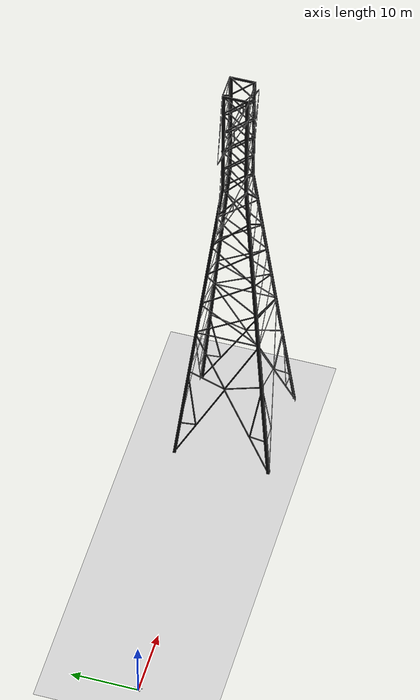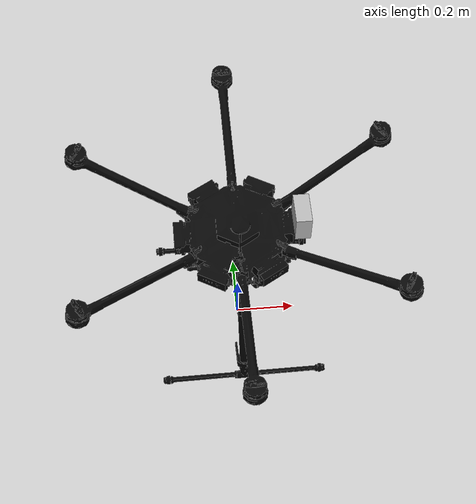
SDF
<sdf version="1.7">
 <world name="default">
  <scene>
   <sky><clouds><speed>12</speed></clouds></sky>
   <ambient>0.5 0.5 0.5 1</ambient>
   <background>0.5 0.5 0.5 1</background>
   <shadows>1</shadows>
  </scene>
  <physics type="ode">
   <ode>
    <solver>
     <type>quick</type>
     <iters>10</iters>
     <sor>1.3</sor>
     <use_dynamic_moi_rescaling>0</use_dynamic_moi_rescaling>
    </solver>
    <constraints>
     <cfm>0</cfm>
     <erp>0.2</erp>
     <contact_max_correcting_vel>10</contact_max_correcting_vel>
     <contact_surface_layer>0.001</contact_surface_layer>
    </constraints>
   </ode>
   <real_time_update_rate>1000</real_time_update_rate>
   <max_step_size>0.001</max_step_size>
   <real_time_factor>1</real_time_factor>
  </physics>
  <include><uri>model://prognodrone</uri></include>
  <gravity>0 0 -9.81</gravity>
  <magnetic_field>6e-06 2.3e-05 -4.2e-05</magnetic_field>
  <atmosphere type="adiabatic"/>
  <spherical_coordinates>
   <surface_model>EARTH_WGS84</surface_model>
   <latitude_deg>0</latitude_deg>
   <longitude_deg>0</longitude_deg>
   <elevation>0</elevation>
   <heading_deg>0</heading_deg>
  </spherical_coordinates>
  <include><uri>model://grass_ground_plane</uri></include>
  <light name="user_directional_light_0" type="directional">
   <pose>-8.08698 4.69506 1 0 -0 0</pose>
   <diffuse>1 1 1 1</diffuse>
   <specular>0.1 0.1 0.1 1</specular>
   <direction>0.1 0.1 -0.9</direction>
   <attenuation>
    <range>20</range>
    <constant>0.5</constant>
    <linear>0.01</linear>
    <quadratic>0.001</quadratic>
   </attenuation>
   <spot><inner_angle>0</inner_angle><outer_angle>0</outer_angle><falloff>0</falloff></spot>
  </light>
  <light name="user_spot_light_0" type="spot">
   <pose>35.0376 -0.001219 1 0 -0 0</pose>
   <diffuse>1 1 1 1</diffuse>
   <specular>0.1 0.1 0.1 1</specular>
   <direction>0 0 -1</direction>
   <attenuation>
    <range>200</range>
    <constant>0</constant>
    <linear>0</linear>
    <quadratic>0.001</quadratic>
   </attenuation>
   <cast_shadows>0</cast_shadows>
   <spot><inner_angle>2</inner_angle><outer_angle>4</outer_angle><falloff>1</falloff></spot>
  </light>
  <light name="user_spot_light_0_clone" type="spot">
   <pose>36.5164 -0.037556 15 0 -0 0</pose>
   <diffuse>1 1 1 1</diffuse>
   <specular>0.0941176 0.0941176 0.0941176 1</specular>
   <direction>0 0 -1</direction>
   <attenuation>
    <range>200</range>
    <constant>0</constant>
    <linear>0</linear>
    <quadratic>0.001</quadratic>
   </attenuation>
   <cast_shadows>0</cast_shadows>
   <spot><inner_angle>2</inner_angle><outer_angle>4</outer_angle><falloff>1</falloff></spot>
  </light>
  <light name="user_spot_light_0_clone_0" type="spot">
   <pose>35.1506 0.020596 15 0 -0 0</pose>
   <diffuse>1 1 1 1</diffuse>
   <specular>0.0941176 0.0941176 0.0941176 1</specular>
   <direction>0 0 -1</direction>
   <attenuation>
    <range>200</range>
    <constant>0</constant>
    <linear>0</linear>
    <quadratic>0.001</quadratic>
   </attenuation>
   <cast_shadows>0</cast_shadows>
   <spot><inner_angle>2</inner_angle><outer_angle>4</outer_angle><falloff>1</falloff></spot>
  </light>
  <light name="user_spot_light_0_clone_1" type="spot">
   <pose>35.4852 -1.32431 15 0 -0 0</pose>
   <diffuse>1 1 1 1</diffuse>
   <specular>0.0941176 0.0941176 0.0941176 1</specular>
   <direction>0 0 -1</direction>
   <attenuation>
    <range>200</range>
    <constant>0</constant>
    <linear>0</linear>
    <quadratic>0.001</quadratic>
   </attenuation>
   <cast_shadows>0</cast_shadows>
   <spot><inner_angle>2</inner_angle><outer_angle>4</outer_angle><falloff>1</falloff></spot>
  </light>
  <include><pose>50 0 0 0 0 0</pose><uri>model://overheadpylon</uri></include>
 </world>
</sdf>

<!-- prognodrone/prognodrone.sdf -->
<sdf version='1.4'>
    <model name='prognodrone'>
        <!-- model plugins should be put in the front of the sensor plugins! -->
        <plugin name='simple_drone' filename='libplugin_drone.so'>
            <bodyName>base_link</bodyName>
            <imuTopic>/dji_sdk/imu</imuTopic>
            <rollpitchProportionalGain>10.0</rollpitchProportionalGain>
            <rollpitchDifferentialGain>5.0</rollpitchDifferentialGain>
            <rollpitchLimit>0.43</rollpitchLimit> <!--        M600Pro-->
            <yawProportionalGain>2.0</yawProportionalGain>
            <yawDifferentialGain>1.0</yawDifferentialGain>
            <yawLimit>2.6</yawLimit> <!--        M600Pro-->
            <velocityXYProportionalGain>5.0</velocityXYProportionalGain>
            <velocityXYDifferentialGain>2.3</velocityXYDifferentialGain>

            <velocityXYLimit>18</velocityXYLimit> <!--        M600Pro-->
            <velocityZProportionalGain>5.0</velocityZProportionalGain>
            <velocityZDifferentialGain>1.0</velocityZDifferentialGain>
            <velocityZLimit>5</velocityZLimit> <!--        M600Pro-->
            <positionXYProportionalGain>1.1</positionXYProportionalGain>
            <positionXYDifferentialGain>0.0</positionXYDifferentialGain>
            <positionXYIntegralGain>0.0</positionXYIntegralGain>
            <positionXYLimit>5</positionXYLimit>
            <positionZProportionalGain>1.0</positionZProportionalGain>
            <positionZDifferentialGain>0.2</positionZDifferentialGain>
            <positionZLimit>-1</positionZLimit>
            <maxForce>60</maxForce>
            <motionSmallNoise>0.05</motionSmallNoise>
            <motionDriftNoise>0.03</motionDriftNoise>
            <motionDriftNoiseTime>5.0</motionDriftNoiseTime>
        </plugin>
        <plugin name="gps_sim"  filename="libhector_gazebo_ros_gps.so" >
            <updateRate>4.0</updateRate>
            <bodyName>base_link</bodyName>
            <frameId>base_link</frameId>
            <topicName>/dji_sdk/gps_position</topicName>
            <velocityTopicName>/dji_sdk/velocity</velocityTopicName>
            <referenceLatitude>49.0128444</referenceLatitude>
            <referenceLongitude>8.407089</referenceLongitude>
            <drift>5.0 5.0 5.0</drift>
            <gaussianNoise>0.01 0.01 0.01</gaussianNoise>
            <velocityDrift>0 0 0</velocityDrift>
            <velocityGaussianNoise>0.05 0.05 0.05</velocityGaussianNoise>
        </plugin>

        <!-- pose of the quadrotor in the world frame -->
        <pose>0 0 0.00 0 0 0</pose>
        <link name='base_link'>
            <inertial>
                <mass>1.477</mass>
                <pose>0 0 0 0 0 0</pose>
                <inertia>         <!-- rotational inertia -->
                    <ixx>0.1152</ixx>
                    <ixy>0</ixy>
                    <ixz>0</ixz>
                    <iyy>0.1152</iyy>
                    <iyz>0</iyz>
                    <izz>0.218</izz>
                </inertia>
            </inertial>

            <visual name='visual'>
                <geometry>
                    <mesh><uri>model://prognodrone/m600.dae</uri></mesh>

                </geometry>
            </visual>

            <visual name='front_camera'>
                <pose> 0.2 0.0 0.6 0 0 0 </pose>
                <geometry>
                    <box>
                        <size>0.05 0.1 0.1</size>
                    </box>
                </geometry>
            </visual>

            <visual name='bottom_camera'>
                <pose> 0.0 0.0 0.4 0 0.5 0 </pose>
                <geometry>
                    <box>
                        <size>0.05 0.1 0.1</size>
                    </box>
                </geometry>
            </visual>

            <collision name='collision'>
                <geometry>
                    <mesh><uri>model://prognodrone/m600.dae</uri></mesh>
                </geometry>
            </collision>

            <gravity>1</gravity>

            <!-- IMU sensor in 100fps -->
            <sensor name='sensor_imu' type='imu'>
                <always_on> 1 </always_on>
                <update_rate> 100 </update_rate>
                <pose> 0 0 0 0 0 0 </pose>
                <plugin name='ros_imu' filename='libplugin_ros_imu.so'>
                </plugin>
                <imu>
                    <noise>
                        <type>gaussian</type>
                        <rate>
                            <mean> 0 </mean>
                            <stddev> 0 </stddev>
                        </rate>
                        <accel>
                            <mean> 0 </mean>
                            <stddev> 0.00 </stddev>
                        </accel>
                    </noise>
                </imu>
            </sensor>

            <!-- Front Depth and Color Cam -->
            <sensor name="camera" type="depth">
                <update_rate>20</update_rate>
                <camera>
                    <horizontal_fov>1.047198</horizontal_fov>
                    <image>
                        <width>640</width>
                        <height>480</height>
                        <format>R8G8B8</format>
                    </image>
                    <clip>
                        <near>0.05</near>
                        <far>5000</far>
                    </clip>
                </camera>
                <pose> 0.2 0.0 0.6 0 0 0 </pose>
                <plugin name="camera_plugin" filename="libgazebo_ros_openni_kinect.so">
                    <baseline>0.2</baseline>
                    <alwaysOn>true</alwaysOn>
                    <updateRate>0.0</updateRate>
                    <cameraName>front_camera</cameraName>
                    <imageTopicName>/drone/front_camera/color/image_raw</imageTopicName>
                    <depthImageTopicName>/drone/front_camera/depth/image_raw</depthImageTopicName>
                    <pointCloudTopicName>/drone/front_camera/depth/points</pointCloudTopicName>
                    <frameName>drone</frameName>
                    <pointCloudCutoff>0.5</pointCloudCutoff>
                    <pointCloudCutoffMax>100</pointCloudCutoffMax>
                    <distortionK1>0</distortionK1>
                    <distortionK2>0</distortionK2>
                    <distortionK3>0</distortionK3>
                    <distortionT1>0</distortionT1>
                    <distortionT2>0</distortionT2>
                    <CxPrime>0</CxPrime>
                    <Cx>0</Cx>
                    <Cy>0</Cy>
                    <focalLength>0</focalLength>
                    <hackBaseline>0</hackBaseline>
                </plugin>
            </sensor>

            <!-- Bottom Depth and Color Cam -->

            <sensor name="camera" type="depth">
                <update_rate>15</update_rate>
                <camera>
                    <horizontal_fov>2.047198</horizontal_fov>
                    <image>
                        <width>640</width>
                        <height>480</height>
                        <format>R8G8B8</format>
                    </image>
                    <clip>
                        <near>0.05</near>
                        <far>5000</far>
                    </clip>
                </camera>
                <pose> 0.0 0.0 0.4 0 0.5 0 </pose>
                <plugin name="camera_plugin" filename="libgazebo_ros_openni_kinect.so">
                    <baseline>0.2</baseline>
                    <alwaysOn>true</alwaysOn>
                    <updateRate>0.0</updateRate>
                    <cameraName>bottom_camera</cameraName>
                    <imageTopicName>/drone/bottom_camera/color/image_raw</imageTopicName>
                    <depthImageTopicName>/drone/bottom_camera/depth/image_raw</depthImageTopicName>
                    <pointCloudTopicName>/drone/bottom_camera/depth/points</pointCloudTopicName>
                    <frameName>drone</frameName>
                    <pointCloudCutoff>0.5</pointCloudCutoff>
                    <pointCloudCutoffMax>100</pointCloudCutoffMax>
                    <distortionK1>0</distortionK1>
                    <distortionK2>0</distortionK2>
                    <distortionK3>0</distortionK3>
                    <distortionT1>0</distortionT1>
                    <distortionT2>0</distortionT2>
                    <CxPrime>0</CxPrime>
                    <Cx>0</Cx>
                    <Cy>0</Cy>
                    <focalLength>0</focalLength>
                    <hackBaseline>0</hackBaseline>
                </plugin>
            </sensor>

        </link>
    </model>
</sdf>

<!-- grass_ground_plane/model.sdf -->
<sdf version="1.5">
  <model name="grass_ground_plane">
  <static>true</static>
    <link name="link">

      <pose>0 0 0 0 0 0</pose>

      <collision name="collision">

         <geometry>
          <plane>
            <normal>0 0 1</normal>
            <size>500 500</size>
          </plane>
        </geometry>

	<surface>
          <friction>
            <ode>
              <mu>100</mu>
              <mu2>50</mu2>
            </ode>
          </friction>
        </surface>

      </collision>

      <visual name="visual">
       <cast_shadows>false</cast_shadows>
        <geometry>
          <plane>
            <normal>0 0 1</normal>
            <size>500 500</size>
          </plane>
        </geometry>
        <material>
          <script>
            <uri>model://grass_ground_plane/materials/scripts</uri>
            <uri>model://grass_ground_plane/materials/textures</uri>
            <name>grass_ground_plane/Diffuse</name>
          </script>
        </material>
      </visual>
    </link>
  </model>
</sdf>

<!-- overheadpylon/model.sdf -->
<sdf version="1.4">
  <model name="overheadpylon">
    <pose>0 0 0 0 0 0</pose>
    <static>true</static>
    <link name="link">
      <collision name="collision">
        <geometry>
          <mesh>
	  <uri>model://overheadpylon/meshes/overheadpylon.dae</uri>
	  </mesh>
        </geometry>
      </collision>
      <visual name="visual">
        <geometry>
          <mesh>
	  <uri>model://overheadpylon/meshes/overheadpylon.dae</uri>
	  </mesh>
        </geometry>
      </visual>
    </link>
  </model>
</sdf>
